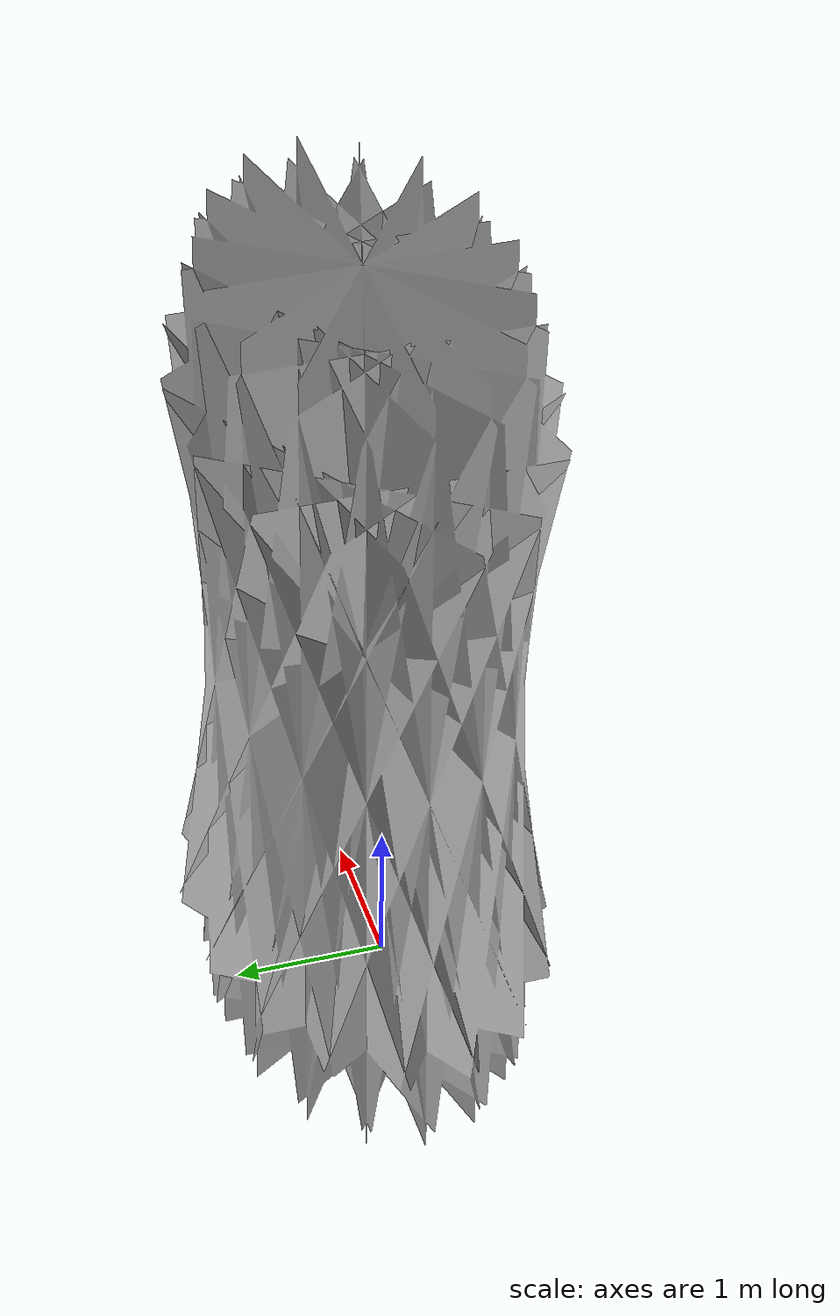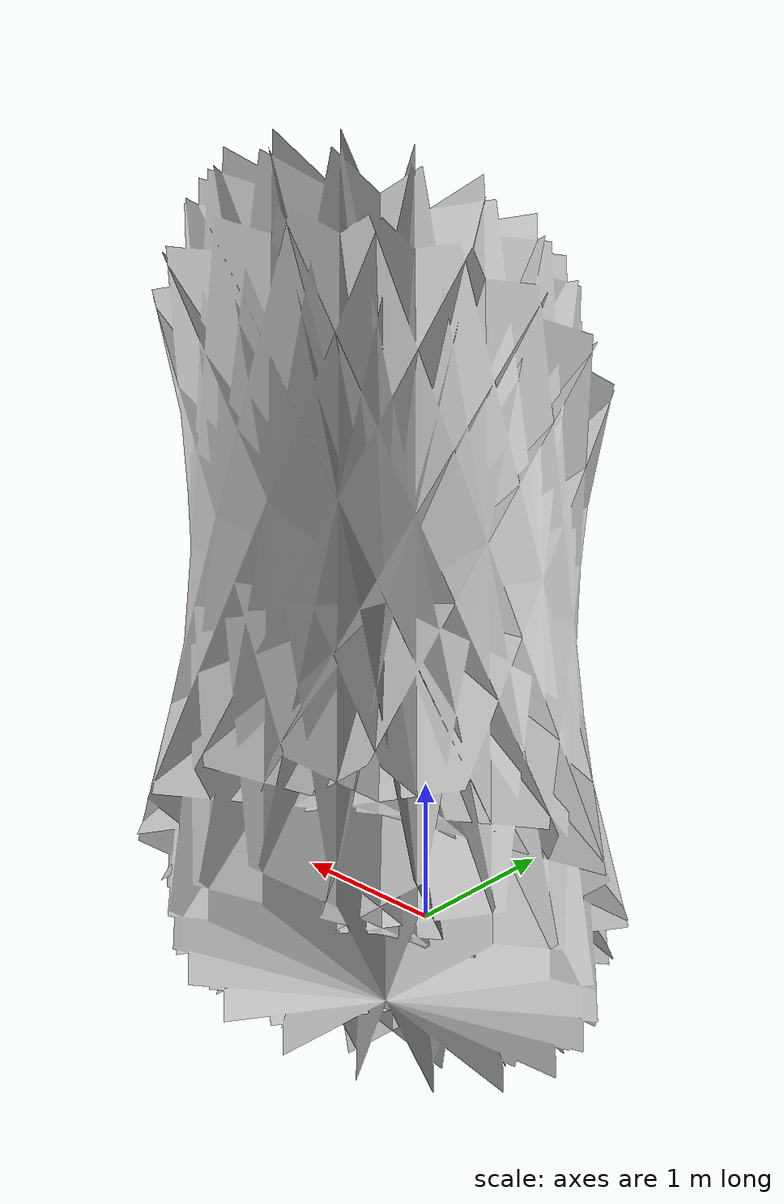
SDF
<?xml version="1.0" ?>
<sdf version='1.5'>
  <model name='fire'>
    <static>true</static>
      <link name='fire'>
        <pose frame=''>0 0 0 0 0 0</pose>
        <collision name="fire">
          <geometry>
            <box>
              <size>0.01 0.01 0.01</size>
            </box>
          </geometry>
        </collision>
        <visual name='fire'>
        <cast_shadows>false</cast_shadows>
          <geometry>
            <mesh>
              <scale>1 1 1</scale>
              <uri>model://fire/model.dae</uri>
            </mesh>
          </geometry>
          <material>
            <script>
              <name>fire</name>
              <uri>model://fire/model.dae</uri>
            </script>
          </material>
        </visual>
      </link>
  </model>
</sdf>
